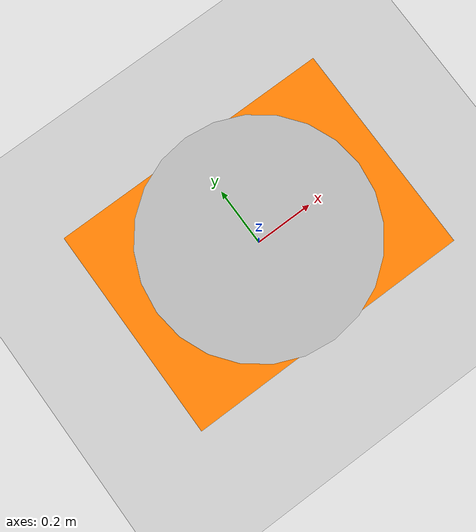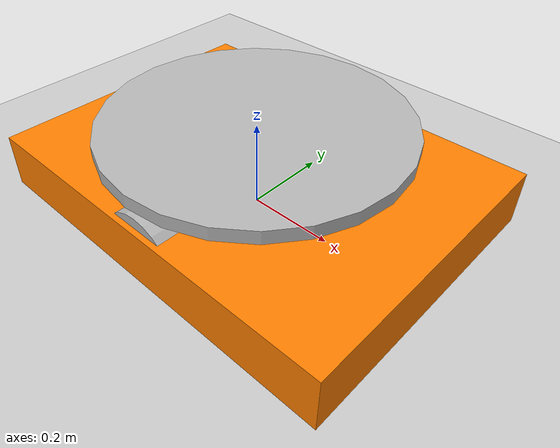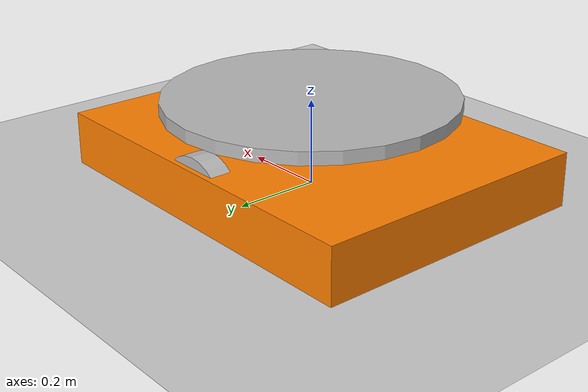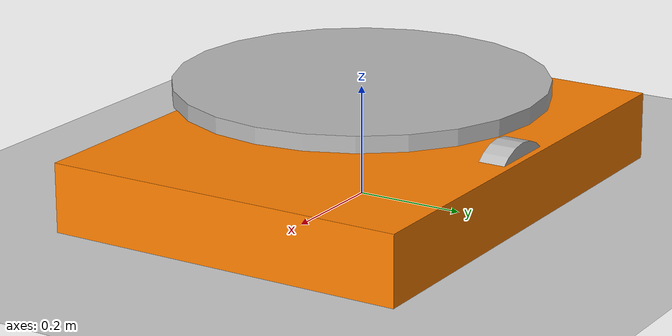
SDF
<sdf version="1.4">
 <world name="default">
  <include><uri>model://sun</uri></include>
  <include><uri>model://ground_plane</uri></include>
  <model name="amazon_warehouse_robot">
   <include><uri>model://amazon_warehouse_robot</uri></include>
   <plugin name="prismatic_joint_control" filename="libgazebo_ros_screw_plugin.so">
    <jointForce>0</jointForce>
   </plugin>
  </model>
 </world>
</sdf>

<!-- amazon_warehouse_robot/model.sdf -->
<sdf version='1.4'>
<model name="amazon_warehouse_robot">

<static>false</static>

<link name='chassis'>
  <pose>0 0 .05 0 0 0</pose>
  <inertial>
      <inertia>
        <ixx>0</ixx>
        <iyy>0</iyy>
        <izz>0</izz>
        <ixy>0</ixy>
        <ixz>0</ixz>
        <iyz>0</iyz>
      </inertia>
     <mass>7.5</mass>
    </inertial>
  <collision name='collision'>
    <geometry>
      <box>
        <size>.9 .675 .15</size>
      </box>
    </geometry>
  </collision>

  <visual name='visual'>
    <geometry>
      <box>
        <size>.9 .675 .15</size>
      </box>
    </geometry>
  <material>
    <ambient>1 0.5 0 1</ambient>
    <diffuse>1 0.5 0 1</diffuse>
    <specular>0.1 0.1 0.1 1</specular>
    <emissive>0 0 0 0</emissive>
  </material>
  </visual>

  <collision name='caster_collision_front'>
    <pose>0.40 0 -0.05 0 0 0</pose>
    <geometry>
      <sphere>
        <radius>.05</radius>
      </sphere>
    </geometry>

  <surface>
    <friction>
      <ode>
        <mu>0.5</mu>
        <mu2>0.5</mu2>
        <slip1>1.0</slip1>
        <slip2>1.0</slip2>
      </ode>
    </friction>
  </surface>
</collision>

<visual name='caster_visual_front'>
  <pose>0.40 0 -0.05 0 0 0</pose>
  <geometry>
    <sphere>
      <radius>.05</radius>
    </sphere>
  </geometry>
</visual>

  <collision name='caster_collision_back'>
    <pose>-0.40 0 -0.05 0 0 0</pose>
    <geometry>
      <sphere>
        <radius>.05</radius>
      </sphere>
    </geometry>

  <surface>
    <friction>
      <ode>
        <mu>0.5</mu>
        <mu2>0.5</mu2>
        <slip1>1.0</slip1>
        <slip2>1.0</slip2>
      </ode>
    </friction>
  </surface>
</collision>

<visual name='caster_visual_back'>
  <pose>-0.40 0 -0.05 0 0 0</pose>
  <geometry>
    <sphere>
      <radius>.05</radius>
    </sphere>
  </geometry>
</visual>

</link>
<link name="left_wheel">
<pose>0 0.30 0.05 0 1.5707 1.5707</pose>
<collision name="collision">
  <geometry>
    <cylinder>
      <radius>.1</radius>
      <length>.05</length>
    </cylinder>
  </geometry>
</collision>
<visual name="visual">
  <geometry>
    <cylinder>
      <radius>.1</radius>
      <length>.05</length>
    </cylinder>
  </geometry>
</visual>
</link>

<link name="right_wheel">
<pose>0 -0.30 0.05 0 1.5707 1.5707</pose>
<collision name="collision">
  <geometry>
    <cylinder>
      <radius>.1</radius>
      <length>.05</length>
    </cylinder>
  </geometry>
</collision>
<visual name="visual">
  <geometry>
    <cylinder>
      <radius>.1</radius>
      <length>.05</length>
    </cylinder>
  </geometry>
</visual>
</link>

<!-- Lets Add a Houkou Sensor -->

   <link name='laser'>
        <pose>0.139000 0.000000 0.15 0.000000 0.000000 0.000000</pose>
        <gravity>0</gravity>
        <inertial>
          <mass>0.100000</mass>
          <inertia>
            <ixx>1.000000</ixx>
            <ixy>0.000000</ixy>
            <ixz>0.000000</ixz>
            <iyy>1.000000</iyy>
            <iyz>0.000000</iyz>
            <izz>1.000000</izz>
         </inertia>
       </inertial>
        <visual name='visual'>
          <geometry>
            <mesh>
              <uri>model://hokuyo/meshes/hokuyo.dae</uri>
           </mesh>
         </geometry>
       </visual>
        <collision name='collision-base'>
          <pose>0.000000 0.000000 -0.014500 0.000000 0.000000 0.000000</pose>
          <geometry>
            <box>
              <size>0.050000 0.050000 0.041000</size>
           </box>
         </geometry>
          <max_contacts>10</max_contacts>
       </collision>
        <collision name='collision-top'>
          <pose>0.000000 0.000000 0.020500 0.000000 0.000000 0.000000</pose>
          <geometry>
            <cylinder>
              <radius>0.021000</radius>
              <length>0.029000</length>
           </cylinder>
         </geometry>
          <max_contacts>10</max_contacts>
       </collision>
        <sensor name='laser' type='ray'>
          <ray>
            <scan>
              <horizontal>
                <samples>180</samples>
                <resolution>1.000000</resolution>
                <min_angle>-1.570000</min_angle>
                <max_angle>1.570000</max_angle>
             </horizontal>
           </scan>
            <range>
              <min>0.080000</min>
              <max>10.000000</max>
              <resolution>0.010000</resolution>
           </range>
         </ray>
          <update_rate>20.000000</update_rate>
          <always_on>1</always_on>
          <visualize>1</visualize>
</sensor>
        <velocity_decay>
          <linear>0.000000</linear>
          <angular>0.000000</angular>
       </velocity_decay>
        <self_collide>0</self_collide>
        <kinematic>0</kinematic>
   </link>

<!--
Lets try to add something on top of chasis that could screw rotate
-->

<link name="top_lift">
<pose>0 0 0.2 0 0 0</pose>
<collision name="collision">
  <geometry>
    <cylinder>
      <radius>.3375</radius>
      <length>.03</length>
    </cylinder>
  </geometry>
        <surface>
          <friction>
            <ode>
              <mu>Inf</mu>
              <mu2>Inf</mu2>
            </ode>
          </friction>
        </surface>

</collision>
<visual name="visual">
  <geometry>
    <cylinder>
      <radius>.3375</radius>
      <length>.03</length>
    </cylinder>
  </geometry>
</visual>
</link>

<joint type="screw" name="top_screw_lift_hinge">
   <pose>0 0 0.2 0 0 0</pose>
  <child>top_lift</child>
  <parent>chassis</parent>
   <axis>
     <xyz>0 0 -1</xyz>
     <limit>
       <upper>1</upper>
       <lower>0</lower>
     </limit>
   </axis>
   <thread_pitch>31.416</thread_pitch>
</joint>

<!--
Screw rotate ends here
-->

<joint type="revolute" name="left_wheel_joint">
<pose>0 0 -0.03 0 0 0</pose>
<child>left_wheel</child>
<parent>chassis</parent>
<axis>
  <xyz>0 1 0</xyz>
</axis>
</joint>

<joint type="revolute" name="right_wheel_joint">
<pose>0 0 0.03 0 0 0</pose>
<child>right_wheel</child>
<parent>chassis</parent>
<axis>
  <xyz>0 1 0</xyz>
</axis>
</joint>
    <joint name='joint_laser' type='fixed'>
        <parent>chassis</parent>
        <child>laser</child>
        <axis>
          <xyz>0.000000 0.000000 0.000000</xyz>
          <limit>
            <lower>0.000000</lower>
            <upper>0.000000</upper>
         </limit>
       </axis>
   </joint>

</model>

</sdf>
